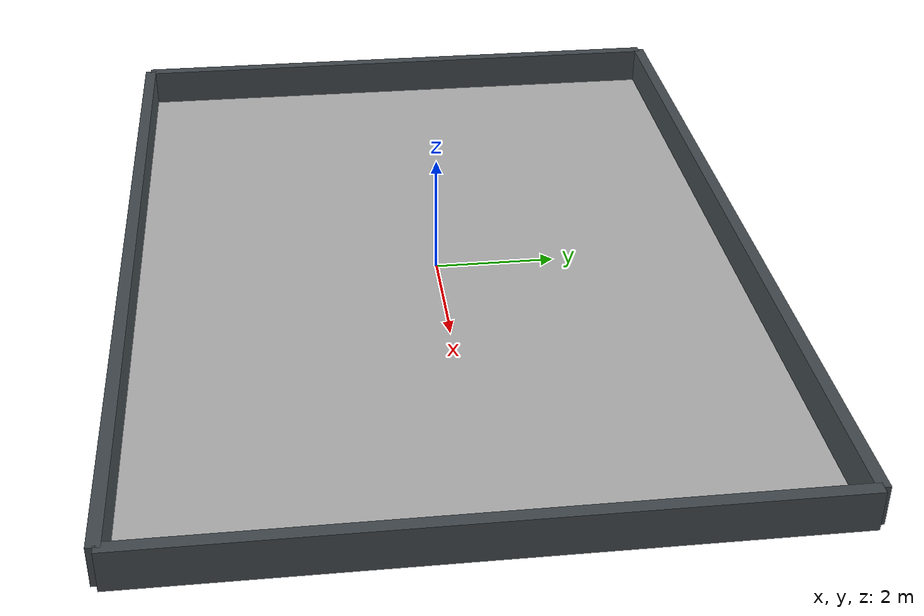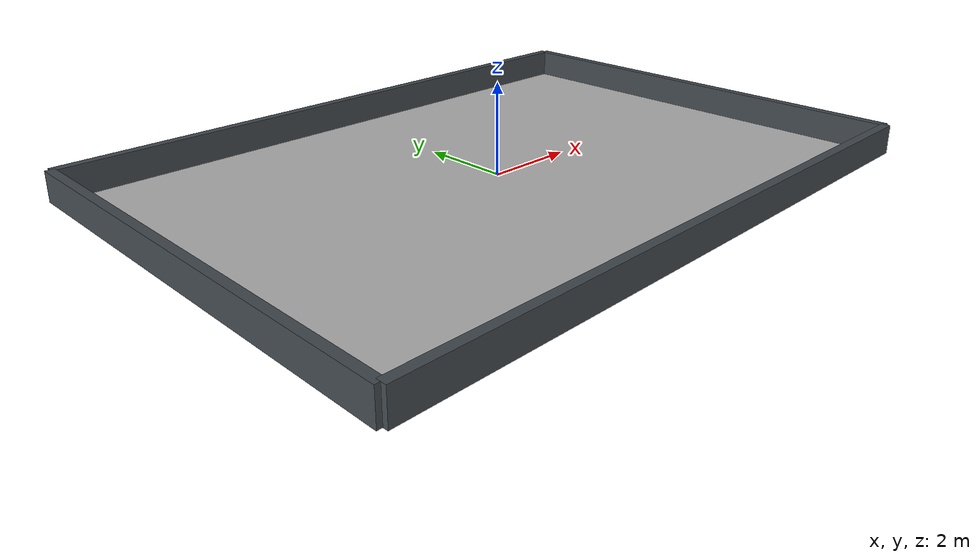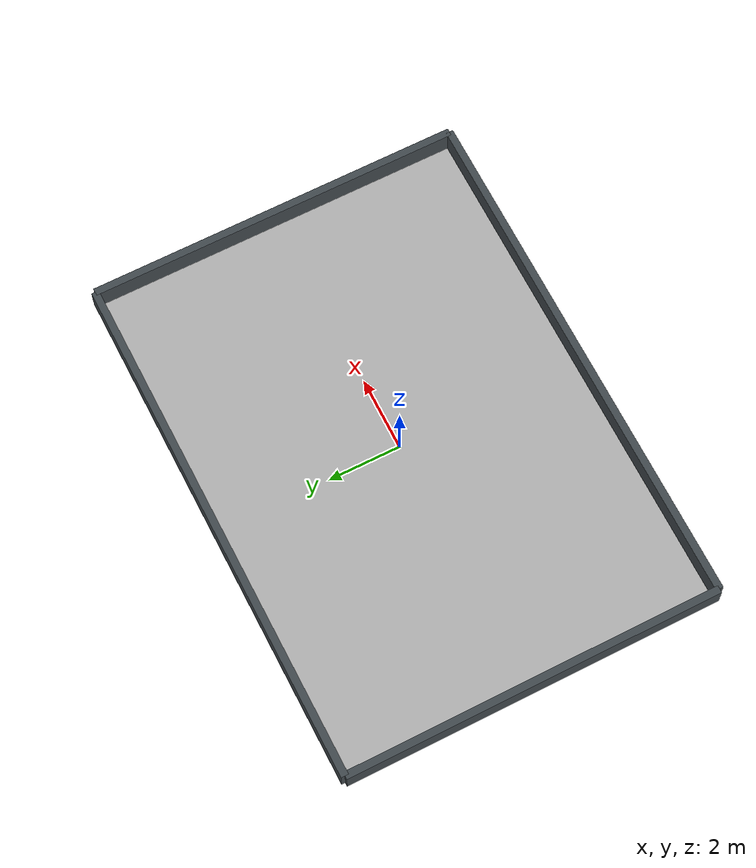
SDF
<?xml version="1.0" ?>
<sdf version="1.9">
  <world name="mundo_vacio_uniforme">
    <plugin filename="gz-sim-physics-system" name="gz::sim::systems::Physics" />
    <plugin filename="gz-sim-scene-broadcaster-system" name="gz::sim::systems::SceneBroadcaster" />
    <plugin filename="gz-sim-user-commands-system" name="gz::sim::systems::UserCommands" />
    <plugin filename="gz-sim-imu-system" name="gz::sim::systems::Imu" />
    <plugin filename="gz-sim-sensors-system" name="gz::sim::systems::Sensors">
      <render_engine>ogre2</render_engine>
    </plugin>

    <gravity>0 0 -9.8</gravity>
    <magnetic_field>6e-06 2.3e-05 -4.2e-05</magnetic_field>
    <atmosphere type="adiabatic" />

    <physics name="default_physics" type="ignored">
      <max_step_size>0.001</max_step_size>
      <real_time_factor>1.0</real_time_factor>
      <real_time_update_rate>1000</real_time_update_rate>
    </physics>

    <scene>
      <ambient>0.52 0.52 0.50 1</ambient>
      <background>0.78 0.84 0.90 1</background>
      <shadows>true</shadows>
    </scene>

    <gui fullscreen="0">
      <camera name="empty_world_overview">
        <pose>-0.8 -10.5 8.0 0 0.98 1.50</pose>
        <view_controller>orbit</view_controller>
        <projection_type>perspective</projection_type>
      </camera>
    </gui>

    <light name="sun" type="directional">
      <cast_shadows>true</cast_shadows>
      <pose>0 0 10 0 0 0</pose>
      <diffuse>1.0 0.94 0.82 1</diffuse>
      <specular>0.25 0.25 0.22 1</specular>
      <attenuation>
        <range>1000</range>
        <constant>0.9</constant>
        <linear>0.01</linear>
        <quadratic>0.001</quadratic>
      </attenuation>
      <direction>-0.45 0.25 -0.86</direction>
    </light>

    <!-- Suelo unico con alta friccion (Gris) - X: -7 a 7 -->
    <model name="floor_uniform_high_friction">
      <static>true</static>
      <pose>0 0 -0.03 0 0 0</pose>
      <link name="link">
        <collision name="collision">
          <geometry><box><size>14 10 0.06</size></box></geometry>
          <surface>
            <friction><ode><mu>1.0</mu><mu2>1.0</mu2></ode></friction>
          </surface>
        </collision>
        <visual name="visual">
          <geometry><box><size>14 10 0.06</size></box></geometry>
          <material><ambient>0.6 0.6 0.6 1</ambient><diffuse>0.7 0.7 0.7 1</diffuse></material>
        </visual>
      </link>
    </model>

    <model name="arena_wall_north">
      <static>true</static>
      <pose>0 5.1 0.325 0 0 0</pose>
      <link name="link">
        <collision name="collision">
          <geometry>
            <box>
              <size>14.2 0.2 0.65</size>
            </box>
          </geometry>
        </collision>
        <visual name="visual">
          <geometry>
            <box>
              <size>14.2 0.2 0.65</size>
            </box>
          </geometry>
          <material>
            <ambient>0.18 0.20 0.22 1</ambient>
            <diffuse>0.26 0.29 0.31 1</diffuse>
          </material>
        </visual>
      </link>
    </model>

    <model name="arena_wall_south">
      <static>true</static>
      <pose>0 -5.1 0.325 0 0 0</pose>
      <link name="link">
        <collision name="collision">
          <geometry>
            <box>
              <size>14.2 0.2 0.65</size>
            </box>
          </geometry>
        </collision>
        <visual name="visual">
          <geometry>
            <box>
              <size>14.2 0.2 0.65</size>
            </box>
          </geometry>
          <material>
            <ambient>0.18 0.20 0.22 1</ambient>
            <diffuse>0.26 0.29 0.31 1</diffuse>
          </material>
        </visual>
      </link>
    </model>

    <model name="arena_wall_east">
      <static>true</static>
      <pose>7.1 0 0.325 0 0 0</pose>
      <link name="link">
        <collision name="collision">
          <geometry>
            <box>
              <size>0.2 10.2 0.65</size>
            </box>
          </geometry>
        </collision>
        <visual name="visual">
          <geometry>
            <box>
              <size>0.2 10.2 0.65</size>
            </box>
          </geometry>
          <material>
            <ambient>0.18 0.20 0.22 1</ambient>
            <diffuse>0.26 0.29 0.31 1</diffuse>
          </material>
        </visual>
      </link>
    </model>

    <model name="arena_wall_west">
      <static>true</static>
      <pose>-7.1 0 0.325 0 0 0</pose>
      <link name="link">
        <collision name="collision">
          <geometry>
            <box>
              <size>0.2 10.2 0.65</size>
            </box>
          </geometry>
        </collision>
        <visual name="visual">
          <geometry>
            <box>
              <size>0.2 10.2 0.65</size>
            </box>
          </geometry>
          <material>
            <ambient>0.18 0.20 0.22 1</ambient>
            <diffuse>0.26 0.29 0.31 1</diffuse>
          </material>
        </visual>
      </link>
    </model>
  </world>
</sdf>
